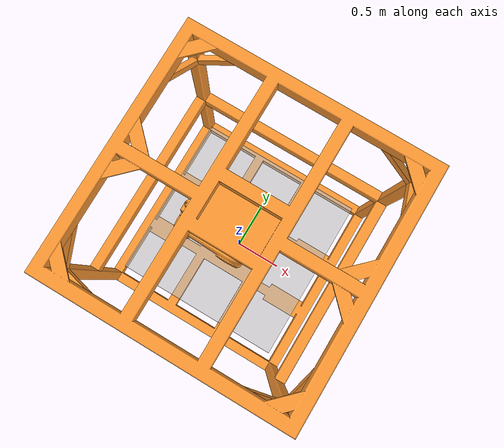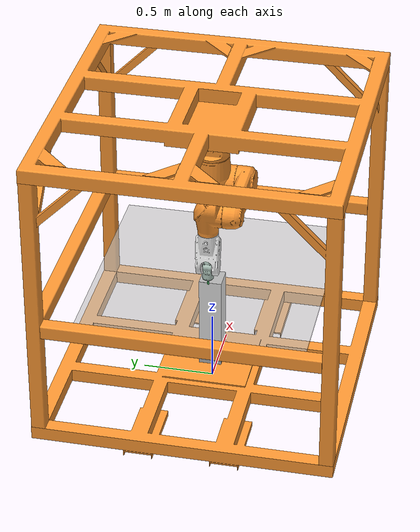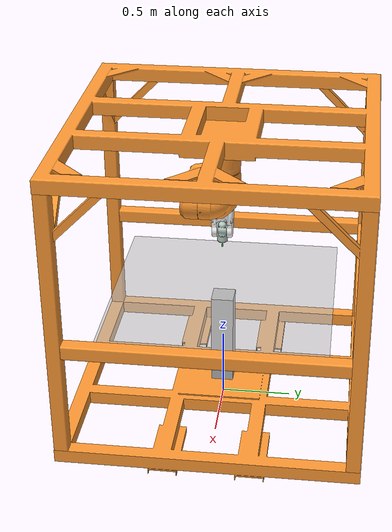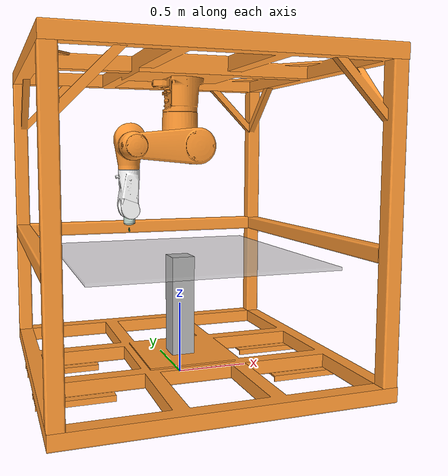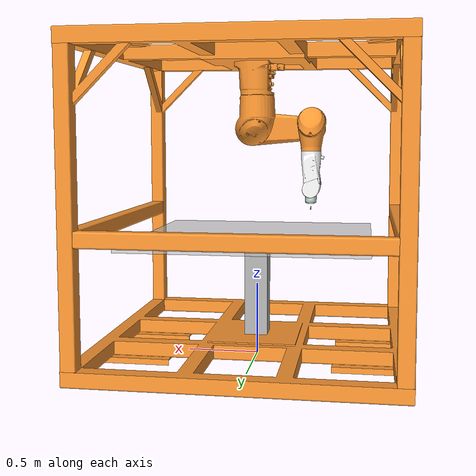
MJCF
<mujoco model="tx90">
  <default class="ur5e">
    <joint axis="0 1 0" range="-6.28319 6.28319" />
    <position ctrlrange="-6.2831 6.2831" />

    <default class="visual_tool">
      <geom type="capsule" contype="0" conaffinity="0" size=".0025 .001" group="2" />
    </default>
    <default class="collision_tool">
      <geom type="capsule" size=".0025 .001" group="3" />
    </default>
    <default class="tool_ball_joint">
      <joint type="ball" range="0 6.28319" stiffness="0.04745737717017077" damping="0.04710022033795812" />
    </default>

    <default class="visual_arm">
      <geom type="mesh" contype="0" conaffinity="0" group="2" />
    </default>
    <default class="collision_arm">
      <geom type="capsule" group="3" />
      <default class="eef_collision">
        <geom type="cylinder" />
      </default>
    </default>
    <site size="0.001" rgba="0.5 0.5 0.5 0.3" group="4" />

    <default class="size3">
      <joint armature="0.1" damping="150" />
      <position kp="5500" forcerange="-150 150" ctrllimited="true" />
      <default class="size3_limited">
        <joint range="-3.1415 3.1415" />
        <position ctrlrange="-3.1415 3.1415" ctrllimited="true" />
      </default>
    </default>
    <default class="size1">
      <joint armature="0.1" damping="15" />
      <position kp="5000" forcerange="-28 28" />
    </default>

    <default class="2f85">
        <mesh scale="0.001 0.001 0.001" />
        <general biastype="affine" />

        <joint axis="1 0 0" />
        <default class="driver">
            <joint range="0 0.8" armature="0.005" damping="0.1" solimplimit="0.95 0.99 0.001" solreflimit="0.005 1" />
        </default>
        <default class="follower">
            <joint range="-0.872664 0.872664" pos="0 -0.018 0.0065" solimplimit="0.95 0.99 0.001" solreflimit="0.005 1" />
        </default>
        <default class="spring_link">
            <joint range="-0.29670597283 0.8" stiffness="0.05" springref="2.62" damping="0.00125" />
        </default>
        <default class="coupler">
            <joint range="-1.57 0" solimplimit="0.95 0.99 0.001" solreflimit="0.005 1" />
        </default>

        <default class="visual">
            <geom type="mesh" contype="0" conaffinity="0" group="2" />
        </default>
        <default class="collision">
            <geom type="mesh" group="3" />
            <default class="pad_box1">
            <geom mass="0" type="box" pos="0 -0.0026 0.028125" size="0.011 0.004 0.009375" friction="0.7" solimp="0.95 0.99 0.001" solref="0.004 1" priority="1" rgba="0.55 0.55 0.55 1" />
            </default>
            <default class="pad_box2">
            <geom mass="0" type="box" pos="0 -0.0026 0.009375" size="0.011 0.004 0.009375" friction="0.6" solimp="0.95 0.99 0.001" solref="0.004 1" priority="1" rgba="0.45 0.45 0.45 1" />
            </default>
        </default>
    </default>
  </default>

    <asset>
        <mesh name="beam" file="beam.STL" scale="0.001 0.001 0.001" />
        <mesh name="beam_1" file="beam_1.STL" scale="0.001 0.001 0.001" />
        <mesh name="beam_2" file="beam_2.STL" scale="0.001 0.001 0.001" />
        <mesh name="beam_front" file="beam_front.STL" scale="0.001 0.001 0.001" />
        <mesh name="lower" file="lower.STL" scale="0.001 0.001 0.001" />
        <mesh name="role" file="role.STL" scale="0.001 0.001 0.001" />
        <mesh name="role_1" file="role_1.STL" scale="0.001 0.001 0.001" />
        <mesh name="role_2" file="role_2.STL" scale="0.001 0.001 0.001" />
        <mesh name="role_3" file="role_3.STL" scale="0.001 0.001 0.001" />
        <mesh name="table" file="table.STL" scale="0.001 0.001 0.001" />
        <mesh name="upper" file="upper.STL" scale="0.001 0.001 0.001" />
    </asset>

    <asset>

        <mesh name="base_link" file="base_link.STL" />
        <mesh name="shoulder_link" file="shoulder_link.STL" />
        <mesh name="upperarm_link" file="upperarm_link.STL" />
        <mesh name="forearm_link" file="forearm_link.STL" />
        <mesh name="wrist_1_link" file="wrist_1_link.STL" />
        <mesh name="wrist_2_link" file="wrist_2_link.STL" />
        <mesh name="wrist_3_link" file="wrist_3_link.STL" />

        <mesh name="base_mount" file="base_mount.stl" scale="0.001 0.001 0.001" />
        <mesh name="base_0" file="base.stl" scale="0.001 0.001 0.001" />
        <mesh name="driver" file="driver.stl" scale="0.001 0.001 0.001" />
        <mesh name="coupler" file="coupler.stl" scale="0.001 0.001 0.001" />
        <mesh name="follower" file="follower.stl" scale="0.001 0.001 0.001" />
        <mesh name="pad" file="pad.stl" scale="0.001 0.001 0.001" />
        <mesh name="silicone_pad" file="silicone_pad.stl" scale="0.001 0.001 0.001" />
        <mesh name="spring_link" file="spring_link.stl" scale="0.001 0.001 0.001" />

        <texture name="ur5_tex" type="2d" builtin="flat" height="32" width="32" rgb1="0.45 0.45 0.45" />
        <texture name="bench_tex" type="2d" builtin="flat" height="32" width="32" rgb1="0.7 0.7 0.7" />
        <texture name="sky_tex" type="skybox" builtin="gradient" width="100" height="100" rgb1="1 1 1" rgb2="0.3 0.3 0.8" />
        <texture name="texgeom" type="cube" builtin="flat" mark="cross" width="127" height="1278" rgb1="0.8 0.6 0.4" rgb2="0.8 0.6 0.4" markrgb="1 1 1" random="0.01" />
        <texture name="floor_tex" type="2d" builtin="checker" rgb1=".2 .3 .4" rgb2=".1 .2 .3" width="100" height="100" />

        <material name="tx90_mat" texture="ur5_tex" shininess="0.9" specular="0.75" reflectance="0.3" />
        <material name="floor_mat" texture="floor_tex" shininess="0.8" texrepeat="10 10" specular="0.7" reflectance="0.5" />
        <material name="bench_mat" texture="bench_tex" shininess="0.1" specular="0.5" reflectance="0.2" />
    </asset>

    <asset>
        <mesh name="usb1" file="Apple2USB - b1-2.STL" scale="0.001 0.001 0.001" />
        <mesh name="usb3" file="Apple2USB - b3-3.STL" scale="0.001 0.001 0.001" />
        <mesh name="usb21" file="2usb1.STL" scale="0.001 0.001 0.001" />
        <mesh name="usb22" file="2usb2.STL" scale="0.001 0.001 0.001" />
        <mesh name="usb23" file="2usb3.STL" scale="0.001 0.001 0.001" />
        <mesh name="usb24" file="2usb4.STL" scale="0.001 0.001 0.001" />
    </asset>

    <worldbody>
        <light diffuse=".5 .5 .5" pos="0 0 3" target="platform" />
            <body name="platform" pos="0 0 2.190" quat="-0.7071 0.7071 0 0">
                <geom type="mesh" rgba="1 0.6 0.2 1" group="0" mesh="beam" />
                <geom type="mesh" rgba="1 0.6 0.2 1" group="0" mesh="beam_1" />
                <geom type="mesh" rgba="1 0.6 0.2 1" group="0" mesh="beam_2" />

                <geom type="mesh" rgba="1 0.6 0.2 1" group="0" mesh="lower" />
                <geom type="mesh" rgba="1 0.6 0.2 1" group="0" mesh="role" />
                <geom type="mesh" rgba="1 0.6 0.2 1" group="0" mesh="role_1" />
                <geom type="mesh" rgba="1 0.6 0.2 1" group="0" mesh="role_2" />
                <geom type="mesh" rgba="1 0.6 0.2 1" group="0" mesh="role_3" />
                <geom type="mesh" rgba="1 0.6 0.2 1" group="0" mesh="upper" />
                <!-- 板子、立柱 -->
                <body>
                  <geom type="box" size=".8 .01 .8" pos="0 1.35 0" rgba=".75 .75 0.75 0.6" /></body>
                <body>
                  <geom type="box" size=".08 .42 .08" pos="0 1.77 0" material="bench_mat" /></body>

                <body name="base_link" pos="0 0.11 0" quat="-0.7071 0.7071 0 0" childclass="ur5e">
                    <geom type="mesh" contype="0" conaffinity="0" group="1" density="0" rgba="1 0.6 0.2 1" mesh="base_link" />
                    <geom type="mesh" rgba="1 0.6 0.2 1" group="1" mesh="base_link" material="tx90_mat" />
                    <body name="shoulder_link" pos="0 0 0.478" quat="-3.67321e-06 1 0 0">
                        <inertial pos="0.019143 -0.024764 0.064595" quat="0.931953 -0.251827 -0.0984466 0.241569" mass="16.935" diaginertia="0.233559 0.221861 0.13293" />
                        <joint name="shoulder_pan_joint" class="size3" pos="0 0 0" axis="0 0 1" range="-3.1416 3.1416" />
                        <geom type="mesh" contype="0" conaffinity="0" group="1" density="0" rgba="1 0.6 0.2 1" mesh="shoulder_link" />
                        <geom type="mesh" rgba="1 0.6 0.2 1" group="1" mesh="shoulder_link" material="tx90_mat" />
                        <body name="upperarm_link" pos="0.05 -0.161 0" quat="0.707105 0.707108 0 0">
                            <inertial pos="-0.17305 8.7062e-06 0.060181" quat="6.77563e-05 0.704508 6.19549e-05 0.709696" mass="12.987" diaginertia="0.452331 0.42529 0.0544776" />
                            <joint name="shoulder_lift_joint" class="size3" pos="0 0 0" axis="0 0 1" range="-1.5708 4.7129" />
                            <geom type="mesh" contype="0" conaffinity="0" group="1" density="0" rgba="1 0.6 0.2 1" mesh="upperarm_link" />
                            <geom type="mesh" rgba="1 0.6 0.2 1" group="1" mesh="upperarm_link" material="tx90_mat" />
                            <body name="forearm_link" pos="-0.425 0 0" quat="0.707105 0 0 -0.707108">
                                <inertial pos="0.0035719 1.5333e-06 -0.095992" quat="0.459315 0.537577 0.537764 0.459185" mass="7.5014" diaginertia="0.058901 0.0574652 0.0336908" />
                                <joint name="elbow_joint" class="size3" pos="0 0 0" axis="0 0 1" range="-4.7129 1.5708" />
                                <geom type="mesh" contype="0" conaffinity="0" group="1" density="0" rgba="1 0.6 0.2 1" mesh="forearm_link" />
                                <geom type="mesh" rgba="1 0.6 0.2 1" group="1" mesh="forearm_link" material="tx90_mat" />
                                <body name="wrist_1_link" pos="0.156 0 -0.111" quat="0.499998 0.5 0.500002 0.5">
                                    <inertial pos="-0.0024877 -1.2046e-05 0.14016" quat="0.999929 8.02222e-05 -0.0118768 -0.000300684" mass="4.5402" diaginertia="0.0432622 0.038394 0.0145088" />
                                    <joint name="wrist_1_joint" class="size1" pos="0 0 0" axis="0 0 -1" range="-3.1416 3.1416" />
                                    <geom type="mesh" contype="0" conaffinity="0" group="1" density="0" rgba="1 1 1 1" mesh="wrist_1_link" />
                                    <geom type="mesh" rgba="1 1 1 1" group="1" mesh="wrist_1_link" material="tx90_mat" />
                                    <body name="wrist_2_link" pos="0 0.032 0.269" quat="0.707105 -0.707108 0 0">
                                        <inertial pos="3.3807e-07 -0.022824 -0.031931" quat="0.499685 0.500302 -0.500307 0.499706" mass="0.56876" diaginertia="0.0011229 0.0010837 0.000382719" />
                                        <joint name="wrist_2_joint" class="size1" pos="0 0 0" axis="0 0 -1" range="-3.1416 3.1416" />
                                        <geom type="mesh" contype="0" conaffinity="0" group="1" density="0" rgba="0.71765 0.80784 0.76471 1" mesh="wrist_2_link" />
                                        <geom type="mesh" rgba="0.71765 0.80784 0.76471 1" group="1" mesh="wrist_2_link" material="tx90_mat" />
                                        <body name="wrist_3_link" pos="0 -0.0995 -0.032" quat="-2.59734e-06 2.59735e-06 -0.707108 0.707105">
                                            <inertial pos="0.00024213 1.6455e-07 -0.0062933" quat="0.498008 0.501613 -0.498379 0.501986" mass="0.030983" diaginertia="2.2488e-05 1.1614e-05 1.1427e-05" />
                                            <joint name="wrist_3_joint" class="size1" pos="0 0 0" axis="0 0 -1" range="-3.1416 3.1416" />
                                            <geom type="mesh" contype="0" conaffinity="0" group="1" density="0" rgba="0.71765 0.80784 0.76471 1" mesh="wrist_3_link" />
                                            <geom type="mesh" rgba="0.71765 0.80784 0.76471 1" group="1" mesh="wrist_3_link" material="tx90_mat" />
                                            <site name="attachment_site" pos="0 0 0" quat="0 0 0 1" />
                                            <body name="ee_link" pos="0 0 0" >
                                                <site name="ee_site" pos="0 0 0" size="0.07 0.035" type="cylinder" rgba="0.5 0.5 0.5 1" />
                                                <body name="usb1" pos="0 0 0.035" >
                                                        <geom type="box" size=".0025 0.006 .012 " pos="0 0 0" rgba="0.2 0.6 0.3 0.995" />
                                                                        <site name="usb_top" type="sphere" size=".001 .001 .001" pos="0 0 0.013" quat="1 0 0 0" />
                                                                        <site name="usb_bottom" type="sphere" size=".001 .001 .001" pos="0 0 0.025" quat="1 0 0 0" />
                                                                        <body><geom type="box" size=".002 .0005 .002" pos="0 0.03 0.003" rgba=".75 .75 0.75 0.7" /></body>
                                                </body>
                                            </body>
                                        </body>
                                    </body>
                                </body>
                            </body>
                        </body>
                    </body>
                </body>
            </body>

    </worldbody>

    <contact>
        <exclude body1="platform" body2="base_link" />
        <exclude body1="base_link" body2="shoulder_link" />
        <exclude body1="shoulder_link" body2="upperarm_link" />
        <exclude body1="upperarm_link" body2="forearm_link" />
        <exclude body1="forearm_link" body2="wrist_1_link" />
        <exclude body1="wrist_1_link" body2="wrist_2_link" />
        <exclude body1="wrist_2_link" body2="wrist_3_link" />
        <exclude body1="ee_link" body2="wrist_3_link" />
    </contact>

    <actuator>
        <general class="size3" name="shoulder_pan_T" ctrlrange="-3.1416 3.1416" joint="shoulder_pan_joint" />
        <general class="size3" name="shoulder_lift_T" ctrlrange="-1.5708 4.7129" joint="shoulder_lift_joint" />
        <general class="size3" name="forearm_T" ctrlrange="-4.7129 1.5708" joint="elbow_joint" />
        <general class="size1" name="wrist_1_T" ctrlrange="-3.1416 3.1416" joint="wrist_1_joint" />
        <general class="size1" name="wrist_2_T" ctrlrange="-3.1416 3.1416" joint="wrist_2_joint" />
        <general class="size1" name="wrist_3_T" ctrlrange="-3.1416 3.1416" joint="wrist_3_joint" />

    </actuator>

    <sensor>
        <force name="ee_force_sensor" site="ee_site" />
        <torque name="ee_torque_sensor" site="ee_site" />
    </sensor>
    <keyframe>
        <key name="home" time="0" ctrl="0 0 90 0 0 0" />
    </keyframe>
</mujoco>
